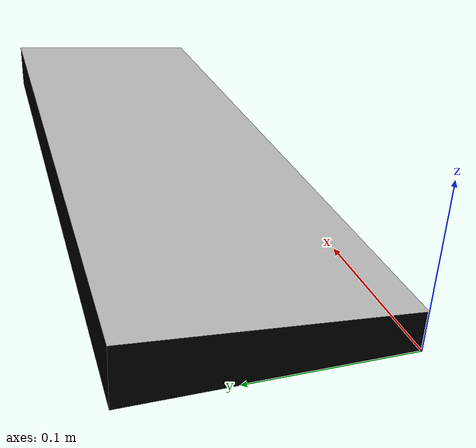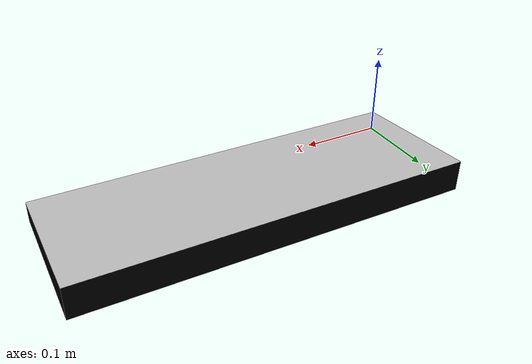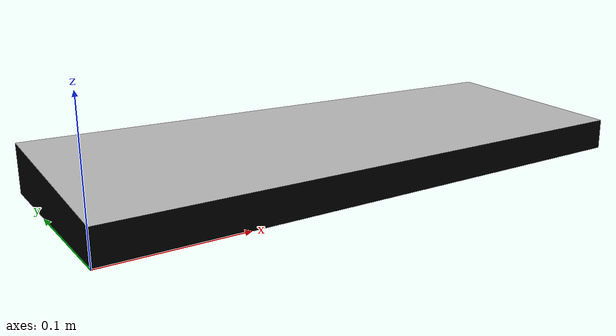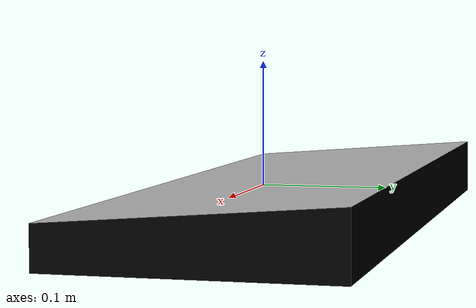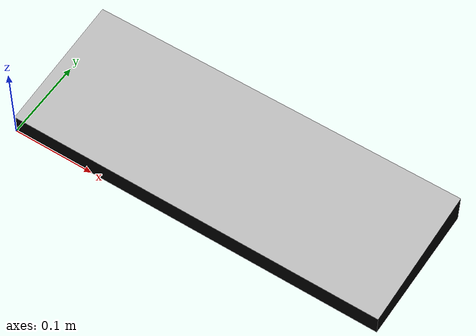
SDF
<?xml version="1.0"?>
<sdf version="1.3">
  <model name="HKU Keyboard">
    <static>true</static>
    <link name="link">
      <collision name="collision">
        <geometry>
          <mesh>
           <uri>model://keyboard/meshes/keyboard.dae</uri>
          </mesh>
        </geometry>
      </collision>
      <visual name="visual">
        <geometry>
          <mesh>
           <uri>model://keyboard/meshes/keyboard.dae</uri>
          </mesh>
        </geometry>
      </visual>
    </link>
  </model>
</sdf>
